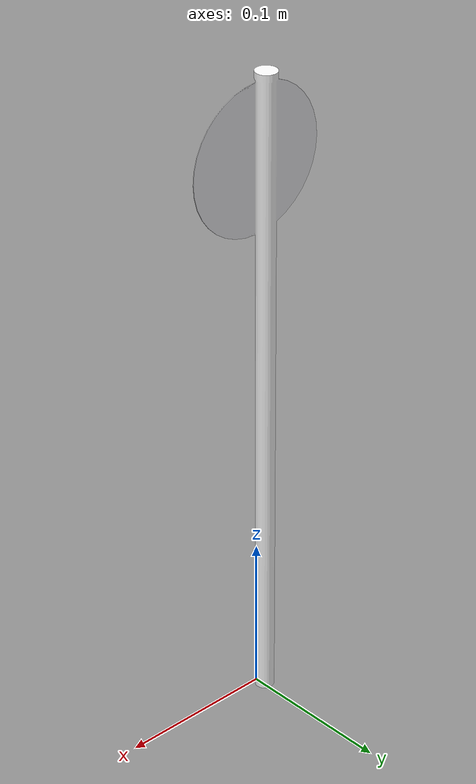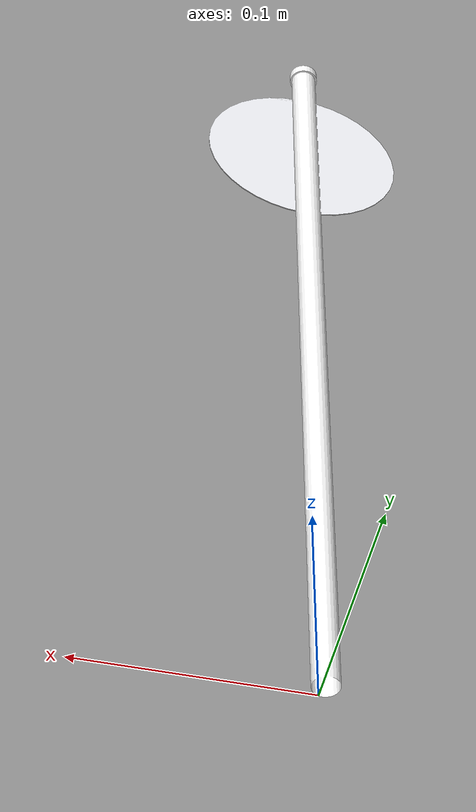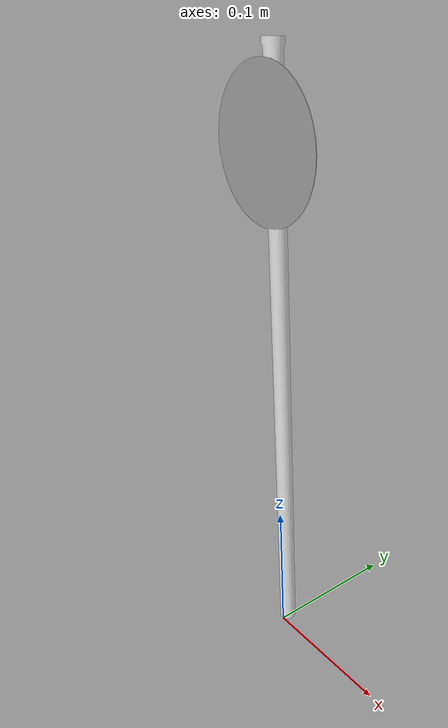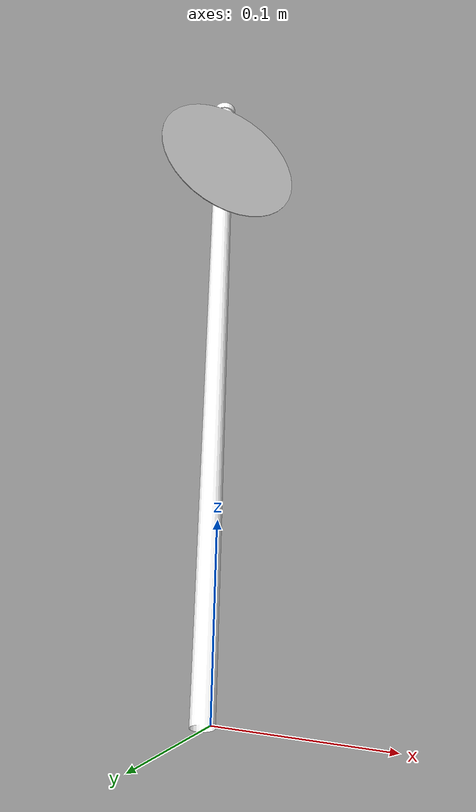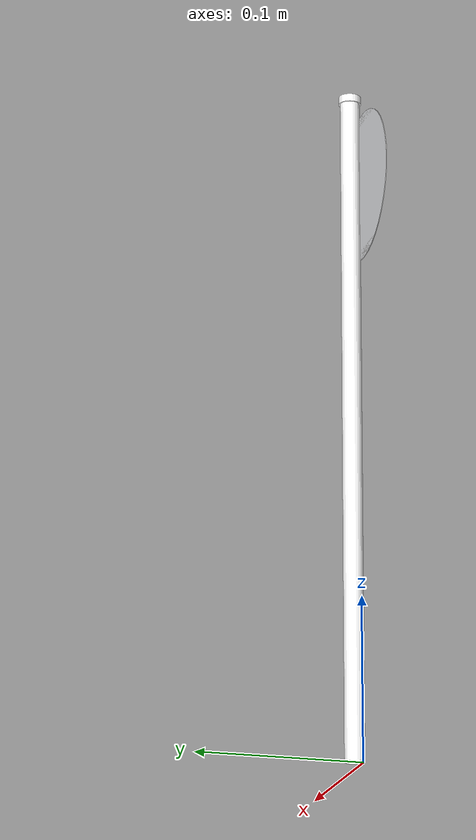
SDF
<?xml version='1.0'?>
<sdf version='1.7'>
  <model name='slow_down'>
	<static>true</static>
    <link name='link_0'>

		<collision name="collision">
		<geometry>
			<mesh>
				<uri>model://slow_down/mesh/model.dae</uri>
	            <scale>0.16 0.16 0.16</scale>
			</mesh>
		</geometry>
		</collision>

		<visual name="visual">
		<cast_shadows>true</cast_shadows>
		<geometry>
			<mesh>
				<uri>model://slow_down/mesh/model.dae</uri>
	            <scale>0.16 0.16 0.16</scale>
			</mesh>
		</geometry>
		</visual>
    </link>
  </model>
</sdf>
